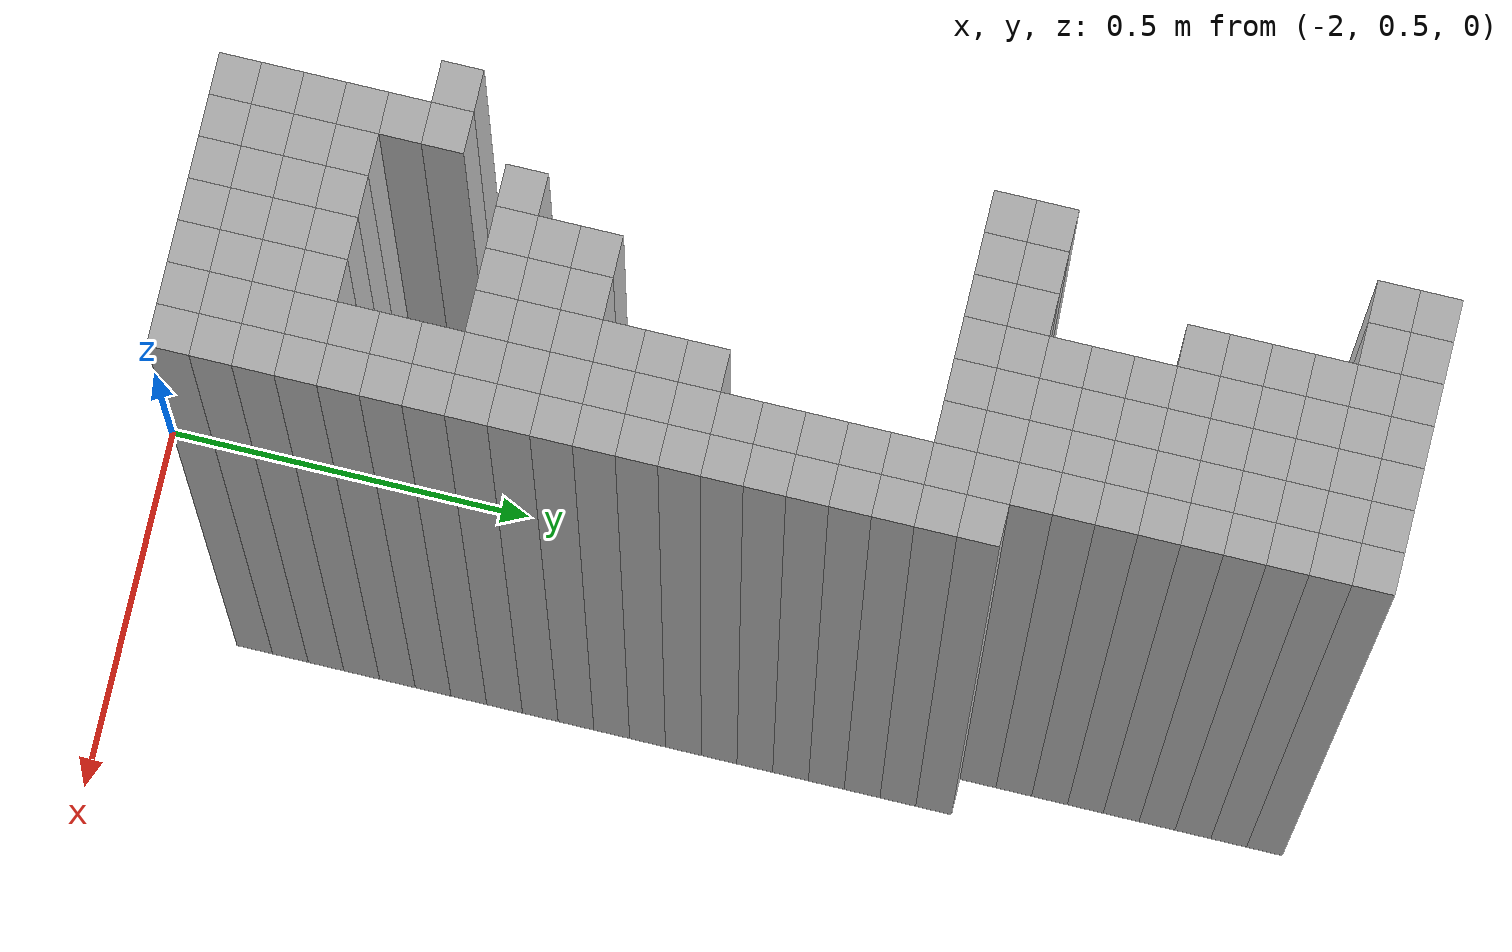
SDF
<sdf version="1.9">
 <world name="map_world">
  <model name="wall_181_112">
   <static>true</static>
   <pose>-2.111 2.080 1.250 0 0 0</pose>
   <link name="link">
    <collision name="collision"><geometry><box><size>0.050 0.050 2.500</size></box></geometry></collision>
    <visual name="visual"><geometry><box><size>0.050 0.050 2.500</size></box></geometry></visual>
   </link>
  </model>
  <model name="wall_182_112">
   <static>true</static>
   <pose>-2.061 2.080 1.250 0 0 0</pose>
   <link name="link">
    <collision name="collision"><geometry><box><size>0.050 0.050 2.500</size></box></geometry></collision>
    <visual name="visual"><geometry><box><size>0.050 0.050 2.500</size></box></geometry></visual>
   </link>
  </model>
  <model name="wall_183_112">
   <static>true</static>
   <pose>-2.011 2.080 1.250 0 0 0</pose>
   <link name="link">
    <collision name="collision"><geometry><box><size>0.050 0.050 2.500</size></box></geometry></collision>
    <visual name="visual"><geometry><box><size>0.050 0.050 2.500</size></box></geometry></visual>
   </link>
  </model>
  <model name="wall_184_112">
   <static>true</static>
   <pose>-1.961 2.080 1.250 0 0 0</pose>
   <link name="link">
    <collision name="collision"><geometry><box><size>0.050 0.050 2.500</size></box></geometry></collision>
    <visual name="visual"><geometry><box><size>0.050 0.050 2.500</size></box></geometry></visual>
   </link>
  </model>
  <model name="wall_185_112">
   <static>true</static>
   <pose>-1.911 2.080 1.250 0 0 0</pose>
   <link name="link">
    <collision name="collision"><geometry><box><size>0.050 0.050 2.500</size></box></geometry></collision>
    <visual name="visual"><geometry><box><size>0.050 0.050 2.500</size></box></geometry></visual>
   </link>
  </model>
  <model name="wall_186_112">
   <static>true</static>
   <pose>-1.861 2.080 1.250 0 0 0</pose>
   <link name="link">
    <collision name="collision"><geometry><box><size>0.050 0.050 2.500</size></box></geometry></collision>
    <visual name="visual"><geometry><box><size>0.050 0.050 2.500</size></box></geometry></visual>
   </link>
  </model>
  <model name="wall_187_112">
   <static>true</static>
   <pose>-1.811 2.080 1.250 0 0 0</pose>
   <link name="link">
    <collision name="collision"><geometry><box><size>0.050 0.050 2.500</size></box></geometry></collision>
    <visual name="visual"><geometry><box><size>0.050 0.050 2.500</size></box></geometry></visual>
   </link>
  </model>
  <model name="wall_181_113">
   <static>true</static>
   <pose>-2.111 2.030 1.250 0 0 0</pose>
   <link name="link">
    <collision name="collision"><geometry><box><size>0.050 0.050 2.500</size></box></geometry></collision>
    <visual name="visual"><geometry><box><size>0.050 0.050 2.500</size></box></geometry></visual>
   </link>
  </model>
  <model name="wall_182_113">
   <static>true</static>
   <pose>-2.061 2.030 1.250 0 0 0</pose>
   <link name="link">
    <collision name="collision"><geometry><box><size>0.050 0.050 2.500</size></box></geometry></collision>
    <visual name="visual"><geometry><box><size>0.050 0.050 2.500</size></box></geometry></visual>
   </link>
  </model>
  <model name="wall_183_113">
   <static>true</static>
   <pose>-2.011 2.030 1.250 0 0 0</pose>
   <link name="link">
    <collision name="collision"><geometry><box><size>0.050 0.050 2.500</size></box></geometry></collision>
    <visual name="visual"><geometry><box><size>0.050 0.050 2.500</size></box></geometry></visual>
   </link>
  </model>
  <model name="wall_184_113">
   <static>true</static>
   <pose>-1.961 2.030 1.250 0 0 0</pose>
   <link name="link">
    <collision name="collision"><geometry><box><size>0.050 0.050 2.500</size></box></geometry></collision>
    <visual name="visual"><geometry><box><size>0.050 0.050 2.500</size></box></geometry></visual>
   </link>
  </model>
  <model name="wall_185_113">
   <static>true</static>
   <pose>-1.911 2.030 1.250 0 0 0</pose>
   <link name="link">
    <collision name="collision"><geometry><box><size>0.050 0.050 2.500</size></box></geometry></collision>
    <visual name="visual"><geometry><box><size>0.050 0.050 2.500</size></box></geometry></visual>
   </link>
  </model>
  <model name="wall_186_113">
   <static>true</static>
   <pose>-1.861 2.030 1.250 0 0 0</pose>
   <link name="link">
    <collision name="collision"><geometry><box><size>0.050 0.050 2.500</size></box></geometry></collision>
    <visual name="visual"><geometry><box><size>0.050 0.050 2.500</size></box></geometry></visual>
   </link>
  </model>
  <model name="wall_187_113">
   <static>true</static>
   <pose>-1.811 2.030 1.250 0 0 0</pose>
   <link name="link">
    <collision name="collision"><geometry><box><size>0.050 0.050 2.500</size></box></geometry></collision>
    <visual name="visual"><geometry><box><size>0.050 0.050 2.500</size></box></geometry></visual>
   </link>
  </model>
  <model name="wall_183_114">
   <static>true</static>
   <pose>-2.011 1.980 1.250 0 0 0</pose>
   <link name="link">
    <collision name="collision"><geometry><box><size>0.050 0.050 2.500</size></box></geometry></collision>
    <visual name="visual"><geometry><box><size>0.050 0.050 2.500</size></box></geometry></visual>
   </link>
  </model>
  <model name="wall_184_114">
   <static>true</static>
   <pose>-1.961 1.980 1.250 0 0 0</pose>
   <link name="link">
    <collision name="collision"><geometry><box><size>0.050 0.050 2.500</size></box></geometry></collision>
    <visual name="visual"><geometry><box><size>0.050 0.050 2.500</size></box></geometry></visual>
   </link>
  </model>
  <model name="wall_185_114">
   <static>true</static>
   <pose>-1.911 1.980 1.250 0 0 0</pose>
   <link name="link">
    <collision name="collision"><geometry><box><size>0.050 0.050 2.500</size></box></geometry></collision>
    <visual name="visual"><geometry><box><size>0.050 0.050 2.500</size></box></geometry></visual>
   </link>
  </model>
  <model name="wall_186_114">
   <static>true</static>
   <pose>-1.861 1.980 1.250 0 0 0</pose>
   <link name="link">
    <collision name="collision"><geometry><box><size>0.050 0.050 2.500</size></box></geometry></collision>
    <visual name="visual"><geometry><box><size>0.050 0.050 2.500</size></box></geometry></visual>
   </link>
  </model>
  <model name="wall_187_114">
   <static>true</static>
   <pose>-1.811 1.980 1.250 0 0 0</pose>
   <link name="link">
    <collision name="collision"><geometry><box><size>0.050 0.050 2.500</size></box></geometry></collision>
    <visual name="visual"><geometry><box><size>0.050 0.050 2.500</size></box></geometry></visual>
   </link>
  </model>
  <model name="wall_183_115">
   <static>true</static>
   <pose>-2.011 1.930 1.250 0 0 0</pose>
   <link name="link">
    <collision name="collision"><geometry><box><size>0.050 0.050 2.500</size></box></geometry></collision>
    <visual name="visual"><geometry><box><size>0.050 0.050 2.500</size></box></geometry></visual>
   </link>
  </model>
  <model name="wall_184_115">
   <static>true</static>
   <pose>-1.961 1.930 1.250 0 0 0</pose>
   <link name="link">
    <collision name="collision"><geometry><box><size>0.050 0.050 2.500</size></box></geometry></collision>
    <visual name="visual"><geometry><box><size>0.050 0.050 2.500</size></box></geometry></visual>
   </link>
  </model>
  <model name="wall_185_115">
   <static>true</static>
   <pose>-1.911 1.930 1.250 0 0 0</pose>
   <link name="link">
    <collision name="collision"><geometry><box><size>0.050 0.050 2.500</size></box></geometry></collision>
    <visual name="visual"><geometry><box><size>0.050 0.050 2.500</size></box></geometry></visual>
   </link>
  </model>
  <model name="wall_186_115">
   <static>true</static>
   <pose>-1.861 1.930 1.250 0 0 0</pose>
   <link name="link">
    <collision name="collision"><geometry><box><size>0.050 0.050 2.500</size></box></geometry></collision>
    <visual name="visual"><geometry><box><size>0.050 0.050 2.500</size></box></geometry></visual>
   </link>
  </model>
  <model name="wall_187_115">
   <static>true</static>
   <pose>-1.811 1.930 1.250 0 0 0</pose>
   <link name="link">
    <collision name="collision"><geometry><box><size>0.050 0.050 2.500</size></box></geometry></collision>
    <visual name="visual"><geometry><box><size>0.050 0.050 2.500</size></box></geometry></visual>
   </link>
  </model>
  <model name="wall_183_116">
   <static>true</static>
   <pose>-2.011 1.880 1.250 0 0 0</pose>
   <link name="link">
    <collision name="collision"><geometry><box><size>0.050 0.050 2.500</size></box></geometry></collision>
    <visual name="visual"><geometry><box><size>0.050 0.050 2.500</size></box></geometry></visual>
   </link>
  </model>
  <model name="wall_184_116">
   <static>true</static>
   <pose>-1.961 1.880 1.250 0 0 0</pose>
   <link name="link">
    <collision name="collision"><geometry><box><size>0.050 0.050 2.500</size></box></geometry></collision>
    <visual name="visual"><geometry><box><size>0.050 0.050 2.500</size></box></geometry></visual>
   </link>
  </model>
  <model name="wall_185_116">
   <static>true</static>
   <pose>-1.911 1.880 1.250 0 0 0</pose>
   <link name="link">
    <collision name="collision"><geometry><box><size>0.050 0.050 2.500</size></box></geometry></collision>
    <visual name="visual"><geometry><box><size>0.050 0.050 2.500</size></box></geometry></visual>
   </link>
  </model>
  <model name="wall_186_116">
   <static>true</static>
   <pose>-1.861 1.880 1.250 0 0 0</pose>
   <link name="link">
    <collision name="collision"><geometry><box><size>0.050 0.050 2.500</size></box></geometry></collision>
    <visual name="visual"><geometry><box><size>0.050 0.050 2.500</size></box></geometry></visual>
   </link>
  </model>
  <model name="wall_187_116">
   <static>true</static>
   <pose>-1.811 1.880 1.250 0 0 0</pose>
   <link name="link">
    <collision name="collision"><geometry><box><size>0.050 0.050 2.500</size></box></geometry></collision>
    <visual name="visual"><geometry><box><size>0.050 0.050 2.500</size></box></geometry></visual>
   </link>
  </model>
  <model name="wall_183_117">
   <static>true</static>
   <pose>-2.011 1.830 1.250 0 0 0</pose>
   <link name="link">
    <collision name="collision"><geometry><box><size>0.050 0.050 2.500</size></box></geometry></collision>
    <visual name="visual"><geometry><box><size>0.050 0.050 2.500</size></box></geometry></visual>
   </link>
  </model>
  <model name="wall_184_117">
   <static>true</static>
   <pose>-1.961 1.830 1.250 0 0 0</pose>
   <link name="link">
    <collision name="collision"><geometry><box><size>0.050 0.050 2.500</size></box></geometry></collision>
    <visual name="visual"><geometry><box><size>0.050 0.050 2.500</size></box></geometry></visual>
   </link>
  </model>
  <model name="wall_185_117">
   <static>true</static>
   <pose>-1.911 1.830 1.250 0 0 0</pose>
   <link name="link">
    <collision name="collision"><geometry><box><size>0.050 0.050 2.500</size></box></geometry></collision>
    <visual name="visual"><geometry><box><size>0.050 0.050 2.500</size></box></geometry></visual>
   </link>
  </model>
  <model name="wall_186_117">
   <static>true</static>
   <pose>-1.861 1.830 1.250 0 0 0</pose>
   <link name="link">
    <collision name="collision"><geometry><box><size>0.050 0.050 2.500</size></box></geometry></collision>
    <visual name="visual"><geometry><box><size>0.050 0.050 2.500</size></box></geometry></visual>
   </link>
  </model>
  <model name="wall_187_117">
   <static>true</static>
   <pose>-1.811 1.830 1.250 0 0 0</pose>
   <link name="link">
    <collision name="collision"><geometry><box><size>0.050 0.050 2.500</size></box></geometry></collision>
    <visual name="visual"><geometry><box><size>0.050 0.050 2.500</size></box></geometry></visual>
   </link>
  </model>
  <model name="wall_184_118">
   <static>true</static>
   <pose>-1.961 1.780 1.250 0 0 0</pose>
   <link name="link">
    <collision name="collision"><geometry><box><size>0.050 0.050 2.500</size></box></geometry></collision>
    <visual name="visual"><geometry><box><size>0.050 0.050 2.500</size></box></geometry></visual>
   </link>
  </model>
  <model name="wall_185_118">
   <static>true</static>
   <pose>-1.911 1.780 1.250 0 0 0</pose>
   <link name="link">
    <collision name="collision"><geometry><box><size>0.050 0.050 2.500</size></box></geometry></collision>
    <visual name="visual"><geometry><box><size>0.050 0.050 2.500</size></box></geometry></visual>
   </link>
  </model>
  <model name="wall_186_118">
   <static>true</static>
   <pose>-1.861 1.780 1.250 0 0 0</pose>
   <link name="link">
    <collision name="collision"><geometry><box><size>0.050 0.050 2.500</size></box></geometry></collision>
    <visual name="visual"><geometry><box><size>0.050 0.050 2.500</size></box></geometry></visual>
   </link>
  </model>
  <model name="wall_187_118">
   <static>true</static>
   <pose>-1.811 1.780 1.250 0 0 0</pose>
   <link name="link">
    <collision name="collision"><geometry><box><size>0.050 0.050 2.500</size></box></geometry></collision>
    <visual name="visual"><geometry><box><size>0.050 0.050 2.500</size></box></geometry></visual>
   </link>
  </model>
  <model name="wall_184_119">
   <static>true</static>
   <pose>-1.961 1.730 1.250 0 0 0</pose>
   <link name="link">
    <collision name="collision"><geometry><box><size>0.050 0.050 2.500</size></box></geometry></collision>
    <visual name="visual"><geometry><box><size>0.050 0.050 2.500</size></box></geometry></visual>
   </link>
  </model>
  <model name="wall_185_119">
   <static>true</static>
   <pose>-1.911 1.730 1.250 0 0 0</pose>
   <link name="link">
    <collision name="collision"><geometry><box><size>0.050 0.050 2.500</size></box></geometry></collision>
    <visual name="visual"><geometry><box><size>0.050 0.050 2.500</size></box></geometry></visual>
   </link>
  </model>
  <model name="wall_186_119">
   <static>true</static>
   <pose>-1.861 1.730 1.250 0 0 0</pose>
   <link name="link">
    <collision name="collision"><geometry><box><size>0.050 0.050 2.500</size></box></geometry></collision>
    <visual name="visual"><geometry><box><size>0.050 0.050 2.500</size></box></geometry></visual>
   </link>
  </model>
  <model name="wall_187_119">
   <static>true</static>
   <pose>-1.811 1.730 1.250 0 0 0</pose>
   <link name="link">
    <collision name="collision"><geometry><box><size>0.050 0.050 2.500</size></box></geometry></collision>
    <visual name="visual"><geometry><box><size>0.050 0.050 2.500</size></box></geometry></visual>
   </link>
  </model>
  <model name="wall_184_120">
   <static>true</static>
   <pose>-1.961 1.680 1.250 0 0 0</pose>
   <link name="link">
    <collision name="collision"><geometry><box><size>0.050 0.050 2.500</size></box></geometry></collision>
    <visual name="visual"><geometry><box><size>0.050 0.050 2.500</size></box></geometry></visual>
   </link>
  </model>
  <model name="wall_185_120">
   <static>true</static>
   <pose>-1.911 1.680 1.250 0 0 0</pose>
   <link name="link">
    <collision name="collision"><geometry><box><size>0.050 0.050 2.500</size></box></geometry></collision>
    <visual name="visual"><geometry><box><size>0.050 0.050 2.500</size></box></geometry></visual>
   </link>
  </model>
  <model name="wall_186_120">
   <static>true</static>
   <pose>-1.861 1.680 1.250 0 0 0</pose>
   <link name="link">
    <collision name="collision"><geometry><box><size>0.050 0.050 2.500</size></box></geometry></collision>
    <visual name="visual"><geometry><box><size>0.050 0.050 2.500</size></box></geometry></visual>
   </link>
  </model>
  <model name="wall_187_120">
   <static>true</static>
   <pose>-1.811 1.680 1.250 0 0 0</pose>
   <link name="link">
    <collision name="collision"><geometry><box><size>0.050 0.050 2.500</size></box></geometry></collision>
    <visual name="visual"><geometry><box><size>0.050 0.050 2.500</size></box></geometry></visual>
   </link>
  </model>
  <model name="wall_181_121">
   <static>true</static>
   <pose>-2.111 1.630 1.250 0 0 0</pose>
   <link name="link">
    <collision name="collision"><geometry><box><size>0.050 0.050 2.500</size></box></geometry></collision>
    <visual name="visual"><geometry><box><size>0.050 0.050 2.500</size></box></geometry></visual>
   </link>
  </model>
  <model name="wall_182_121">
   <static>true</static>
   <pose>-2.061 1.630 1.250 0 0 0</pose>
   <link name="link">
    <collision name="collision"><geometry><box><size>0.050 0.050 2.500</size></box></geometry></collision>
    <visual name="visual"><geometry><box><size>0.050 0.050 2.500</size></box></geometry></visual>
   </link>
  </model>
  <model name="wall_183_121">
   <static>true</static>
   <pose>-2.011 1.630 1.250 0 0 0</pose>
   <link name="link">
    <collision name="collision"><geometry><box><size>0.050 0.050 2.500</size></box></geometry></collision>
    <visual name="visual"><geometry><box><size>0.050 0.050 2.500</size></box></geometry></visual>
   </link>
  </model>
  <model name="wall_184_121">
   <static>true</static>
   <pose>-1.961 1.630 1.250 0 0 0</pose>
   <link name="link">
    <collision name="collision"><geometry><box><size>0.050 0.050 2.500</size></box></geometry></collision>
    <visual name="visual"><geometry><box><size>0.050 0.050 2.500</size></box></geometry></visual>
   </link>
  </model>
  <model name="wall_185_121">
   <static>true</static>
   <pose>-1.911 1.630 1.250 0 0 0</pose>
   <link name="link">
    <collision name="collision"><geometry><box><size>0.050 0.050 2.500</size></box></geometry></collision>
    <visual name="visual"><geometry><box><size>0.050 0.050 2.500</size></box></geometry></visual>
   </link>
  </model>
  <model name="wall_186_121">
   <static>true</static>
   <pose>-1.861 1.630 1.250 0 0 0</pose>
   <link name="link">
    <collision name="collision"><geometry><box><size>0.050 0.050 2.500</size></box></geometry></collision>
    <visual name="visual"><geometry><box><size>0.050 0.050 2.500</size></box></geometry></visual>
   </link>
  </model>
  <model name="wall_187_121">
   <static>true</static>
   <pose>-1.811 1.630 1.250 0 0 0</pose>
   <link name="link">
    <collision name="collision"><geometry><box><size>0.050 0.050 2.500</size></box></geometry></collision>
    <visual name="visual"><geometry><box><size>0.050 0.050 2.500</size></box></geometry></visual>
   </link>
  </model>
  <model name="wall_188_121">
   <static>true</static>
   <pose>-1.761 1.630 1.250 0 0 0</pose>
   <link name="link">
    <collision name="collision"><geometry><box><size>0.050 0.050 2.500</size></box></geometry></collision>
    <visual name="visual"><geometry><box><size>0.050 0.050 2.500</size></box></geometry></visual>
   </link>
  </model>
  <model name="wall_181_122">
   <static>true</static>
   <pose>-2.111 1.580 1.250 0 0 0</pose>
   <link name="link">
    <collision name="collision"><geometry><box><size>0.050 0.050 2.500</size></box></geometry></collision>
    <visual name="visual"><geometry><box><size>0.050 0.050 2.500</size></box></geometry></visual>
   </link>
  </model>
  <model name="wall_182_122">
   <static>true</static>
   <pose>-2.061 1.580 1.250 0 0 0</pose>
   <link name="link">
    <collision name="collision"><geometry><box><size>0.050 0.050 2.500</size></box></geometry></collision>
    <visual name="visual"><geometry><box><size>0.050 0.050 2.500</size></box></geometry></visual>
   </link>
  </model>
  <model name="wall_183_122">
   <static>true</static>
   <pose>-2.011 1.580 1.250 0 0 0</pose>
   <link name="link">
    <collision name="collision"><geometry><box><size>0.050 0.050 2.500</size></box></geometry></collision>
    <visual name="visual"><geometry><box><size>0.050 0.050 2.500</size></box></geometry></visual>
   </link>
  </model>
  <model name="wall_184_122">
   <static>true</static>
   <pose>-1.961 1.580 1.250 0 0 0</pose>
   <link name="link">
    <collision name="collision"><geometry><box><size>0.050 0.050 2.500</size></box></geometry></collision>
    <visual name="visual"><geometry><box><size>0.050 0.050 2.500</size></box></geometry></visual>
   </link>
  </model>
  <model name="wall_185_122">
   <static>true</static>
   <pose>-1.911 1.580 1.250 0 0 0</pose>
   <link name="link">
    <collision name="collision"><geometry><box><size>0.050 0.050 2.500</size></box></geometry></collision>
    <visual name="visual"><geometry><box><size>0.050 0.050 2.500</size></box></geometry></visual>
   </link>
  </model>
  <model name="wall_186_122">
   <static>true</static>
   <pose>-1.861 1.580 1.250 0 0 0</pose>
   <link name="link">
    <collision name="collision"><geometry><box><size>0.050 0.050 2.500</size></box></geometry></collision>
    <visual name="visual"><geometry><box><size>0.050 0.050 2.500</size></box></geometry></visual>
   </link>
  </model>
  <model name="wall_187_122">
   <static>true</static>
   <pose>-1.811 1.580 1.250 0 0 0</pose>
   <link name="link">
    <collision name="collision"><geometry><box><size>0.050 0.050 2.500</size></box></geometry></collision>
    <visual name="visual"><geometry><box><size>0.050 0.050 2.500</size></box></geometry></visual>
   </link>
  </model>
  <model name="wall_188_122">
   <static>true</static>
   <pose>-1.761 1.580 1.250 0 0 0</pose>
   <link name="link">
    <collision name="collision"><geometry><box><size>0.050 0.050 2.500</size></box></geometry></collision>
    <visual name="visual"><geometry><box><size>0.050 0.050 2.500</size></box></geometry></visual>
   </link>
  </model>
  <model name="wall_187_123">
   <static>true</static>
   <pose>-1.811 1.530 1.250 0 0 0</pose>
   <link name="link">
    <collision name="collision"><geometry><box><size>0.050 0.050 2.500</size></box></geometry></collision>
    <visual name="visual"><geometry><box><size>0.050 0.050 2.500</size></box></geometry></visual>
   </link>
  </model>
  <model name="wall_188_123">
   <static>true</static>
   <pose>-1.761 1.530 1.250 0 0 0</pose>
   <link name="link">
    <collision name="collision"><geometry><box><size>0.050 0.050 2.500</size></box></geometry></collision>
    <visual name="visual"><geometry><box><size>0.050 0.050 2.500</size></box></geometry></visual>
   </link>
  </model>
  <model name="wall_187_124">
   <static>true</static>
   <pose>-1.811 1.480 1.250 0 0 0</pose>
   <link name="link">
    <collision name="collision"><geometry><box><size>0.050 0.050 2.500</size></box></geometry></collision>
    <visual name="visual"><geometry><box><size>0.050 0.050 2.500</size></box></geometry></visual>
   </link>
  </model>
  <model name="wall_188_124">
   <static>true</static>
   <pose>-1.761 1.480 1.250 0 0 0</pose>
   <link name="link">
    <collision name="collision"><geometry><box><size>0.050 0.050 2.500</size></box></geometry></collision>
    <visual name="visual"><geometry><box><size>0.050 0.050 2.500</size></box></geometry></visual>
   </link>
  </model>
  <model name="wall_187_125">
   <static>true</static>
   <pose>-1.811 1.430 1.250 0 0 0</pose>
   <link name="link">
    <collision name="collision"><geometry><box><size>0.050 0.050 2.500</size></box></geometry></collision>
    <visual name="visual"><geometry><box><size>0.050 0.050 2.500</size></box></geometry></visual>
   </link>
  </model>
  <model name="wall_188_125">
   <static>true</static>
   <pose>-1.761 1.430 1.250 0 0 0</pose>
   <link name="link">
    <collision name="collision"><geometry><box><size>0.050 0.050 2.500</size></box></geometry></collision>
    <visual name="visual"><geometry><box><size>0.050 0.050 2.500</size></box></geometry></visual>
   </link>
  </model>
  <model name="wall_187_126">
   <static>true</static>
   <pose>-1.811 1.380 1.250 0 0 0</pose>
   <link name="link">
    <collision name="collision"><geometry><box><size>0.050 0.050 2.500</size></box></geometry></collision>
    <visual name="visual"><geometry><box><size>0.050 0.050 2.500</size></box></geometry></visual>
   </link>
  </model>
  <model name="wall_188_126">
   <static>true</static>
   <pose>-1.761 1.380 1.250 0 0 0</pose>
   <link name="link">
    <collision name="collision"><geometry><box><size>0.050 0.050 2.500</size></box></geometry></collision>
    <visual name="visual"><geometry><box><size>0.050 0.050 2.500</size></box></geometry></visual>
   </link>
  </model>
  <model name="wall_187_127">
   <static>true</static>
   <pose>-1.811 1.330 1.250 0 0 0</pose>
   <link name="link">
    <collision name="collision"><geometry><box><size>0.050 0.050 2.500</size></box></geometry></collision>
    <visual name="visual"><geometry><box><size>0.050 0.050 2.500</size></box></geometry></visual>
   </link>
  </model>
  <model name="wall_188_127">
   <static>true</static>
   <pose>-1.761 1.330 1.250 0 0 0</pose>
   <link name="link">
    <collision name="collision"><geometry><box><size>0.050 0.050 2.500</size></box></geometry></collision>
    <visual name="visual"><geometry><box><size>0.050 0.050 2.500</size></box></geometry></visual>
   </link>
  </model>
  <model name="wall_186_128">
   <static>true</static>
   <pose>-1.861 1.280 1.250 0 0 0</pose>
   <link name="link">
    <collision name="collision"><geometry><box><size>0.050 0.050 2.500</size></box></geometry></collision>
    <visual name="visual"><geometry><box><size>0.050 0.050 2.500</size></box></geometry></visual>
   </link>
  </model>
  <model name="wall_187_128">
   <static>true</static>
   <pose>-1.811 1.280 1.250 0 0 0</pose>
   <link name="link">
    <collision name="collision"><geometry><box><size>0.050 0.050 2.500</size></box></geometry></collision>
    <visual name="visual"><geometry><box><size>0.050 0.050 2.500</size></box></geometry></visual>
   </link>
  </model>
  <model name="wall_188_128">
   <static>true</static>
   <pose>-1.761 1.280 1.250 0 0 0</pose>
   <link name="link">
    <collision name="collision"><geometry><box><size>0.050 0.050 2.500</size></box></geometry></collision>
    <visual name="visual"><geometry><box><size>0.050 0.050 2.500</size></box></geometry></visual>
   </link>
  </model>
  <model name="wall_186_129">
   <static>true</static>
   <pose>-1.861 1.230 1.250 0 0 0</pose>
   <link name="link">
    <collision name="collision"><geometry><box><size>0.050 0.050 2.500</size></box></geometry></collision>
    <visual name="visual"><geometry><box><size>0.050 0.050 2.500</size></box></geometry></visual>
   </link>
  </model>
  <model name="wall_187_129">
   <static>true</static>
   <pose>-1.811 1.230 1.250 0 0 0</pose>
   <link name="link">
    <collision name="collision"><geometry><box><size>0.050 0.050 2.500</size></box></geometry></collision>
    <visual name="visual"><geometry><box><size>0.050 0.050 2.500</size></box></geometry></visual>
   </link>
  </model>
  <model name="wall_188_129">
   <static>true</static>
   <pose>-1.761 1.230 1.250 0 0 0</pose>
   <link name="link">
    <collision name="collision"><geometry><box><size>0.050 0.050 2.500</size></box></geometry></collision>
    <visual name="visual"><geometry><box><size>0.050 0.050 2.500</size></box></geometry></visual>
   </link>
  </model>
  <model name="wall_186_130">
   <static>true</static>
   <pose>-1.861 1.180 1.250 0 0 0</pose>
   <link name="link">
    <collision name="collision"><geometry><box><size>0.050 0.050 2.500</size></box></geometry></collision>
    <visual name="visual"><geometry><box><size>0.050 0.050 2.500</size></box></geometry></visual>
   </link>
  </model>
  <model name="wall_187_130">
   <static>true</static>
   <pose>-1.811 1.180 1.250 0 0 0</pose>
   <link name="link">
    <collision name="collision"><geometry><box><size>0.050 0.050 2.500</size></box></geometry></collision>
    <visual name="visual"><geometry><box><size>0.050 0.050 2.500</size></box></geometry></visual>
   </link>
  </model>
  <model name="wall_188_130">
   <static>true</static>
   <pose>-1.761 1.180 1.250 0 0 0</pose>
   <link name="link">
    <collision name="collision"><geometry><box><size>0.050 0.050 2.500</size></box></geometry></collision>
    <visual name="visual"><geometry><box><size>0.050 0.050 2.500</size></box></geometry></visual>
   </link>
  </model>
  <model name="wall_184_131">
   <static>true</static>
   <pose>-1.961 1.130 1.250 0 0 0</pose>
   <link name="link">
    <collision name="collision"><geometry><box><size>0.050 0.050 2.500</size></box></geometry></collision>
    <visual name="visual"><geometry><box><size>0.050 0.050 2.500</size></box></geometry></visual>
   </link>
  </model>
  <model name="wall_185_131">
   <static>true</static>
   <pose>-1.911 1.130 1.250 0 0 0</pose>
   <link name="link">
    <collision name="collision"><geometry><box><size>0.050 0.050 2.500</size></box></geometry></collision>
    <visual name="visual"><geometry><box><size>0.050 0.050 2.500</size></box></geometry></visual>
   </link>
  </model>
  <model name="wall_186_131">
   <static>true</static>
   <pose>-1.861 1.130 1.250 0 0 0</pose>
   <link name="link">
    <collision name="collision"><geometry><box><size>0.050 0.050 2.500</size></box></geometry></collision>
    <visual name="visual"><geometry><box><size>0.050 0.050 2.500</size></box></geometry></visual>
   </link>
  </model>
  <model name="wall_187_131">
   <static>true</static>
   <pose>-1.811 1.130 1.250 0 0 0</pose>
   <link name="link">
    <collision name="collision"><geometry><box><size>0.050 0.050 2.500</size></box></geometry></collision>
    <visual name="visual"><geometry><box><size>0.050 0.050 2.500</size></box></geometry></visual>
   </link>
  </model>
  <model name="wall_188_131">
   <static>true</static>
   <pose>-1.761 1.130 1.250 0 0 0</pose>
   <link name="link">
    <collision name="collision"><geometry><box><size>0.050 0.050 2.500</size></box></geometry></collision>
    <visual name="visual"><geometry><box><size>0.050 0.050 2.500</size></box></geometry></visual>
   </link>
  </model>
  <model name="wall_184_132">
   <static>true</static>
   <pose>-1.961 1.080 1.250 0 0 0</pose>
   <link name="link">
    <collision name="collision"><geometry><box><size>0.050 0.050 2.500</size></box></geometry></collision>
    <visual name="visual"><geometry><box><size>0.050 0.050 2.500</size></box></geometry></visual>
   </link>
  </model>
  <model name="wall_185_132">
   <static>true</static>
   <pose>-1.911 1.080 1.250 0 0 0</pose>
   <link name="link">
    <collision name="collision"><geometry><box><size>0.050 0.050 2.500</size></box></geometry></collision>
    <visual name="visual"><geometry><box><size>0.050 0.050 2.500</size></box></geometry></visual>
   </link>
  </model>
  <model name="wall_186_132">
   <static>true</static>
   <pose>-1.861 1.080 1.250 0 0 0</pose>
   <link name="link">
    <collision name="collision"><geometry><box><size>0.050 0.050 2.500</size></box></geometry></collision>
    <visual name="visual"><geometry><box><size>0.050 0.050 2.500</size></box></geometry></visual>
   </link>
  </model>
  <model name="wall_187_132">
   <static>true</static>
   <pose>-1.811 1.080 1.250 0 0 0</pose>
   <link name="link">
    <collision name="collision"><geometry><box><size>0.050 0.050 2.500</size></box></geometry></collision>
    <visual name="visual"><geometry><box><size>0.050 0.050 2.500</size></box></geometry></visual>
   </link>
  </model>
  <model name="wall_188_132">
   <static>true</static>
   <pose>-1.761 1.080 1.250 0 0 0</pose>
   <link name="link">
    <collision name="collision"><geometry><box><size>0.050 0.050 2.500</size></box></geometry></collision>
    <visual name="visual"><geometry><box><size>0.050 0.050 2.500</size></box></geometry></visual>
   </link>
  </model>
  <model name="wall_183_133">
   <static>true</static>
   <pose>-2.011 1.030 1.250 0 0 0</pose>
   <link name="link">
    <collision name="collision"><geometry><box><size>0.050 0.050 2.500</size></box></geometry></collision>
    <visual name="visual"><geometry><box><size>0.050 0.050 2.500</size></box></geometry></visual>
   </link>
  </model>
  <model name="wall_184_133">
   <static>true</static>
   <pose>-1.961 1.030 1.250 0 0 0</pose>
   <link name="link">
    <collision name="collision"><geometry><box><size>0.050 0.050 2.500</size></box></geometry></collision>
    <visual name="visual"><geometry><box><size>0.050 0.050 2.500</size></box></geometry></visual>
   </link>
  </model>
  <model name="wall_185_133">
   <static>true</static>
   <pose>-1.911 1.030 1.250 0 0 0</pose>
   <link name="link">
    <collision name="collision"><geometry><box><size>0.050 0.050 2.500</size></box></geometry></collision>
    <visual name="visual"><geometry><box><size>0.050 0.050 2.500</size></box></geometry></visual>
   </link>
  </model>
  <model name="wall_186_133">
   <static>true</static>
   <pose>-1.861 1.030 1.250 0 0 0</pose>
   <link name="link">
    <collision name="collision"><geometry><box><size>0.050 0.050 2.500</size></box></geometry></collision>
    <visual name="visual"><geometry><box><size>0.050 0.050 2.500</size></box></geometry></visual>
   </link>
  </model>
  <model name="wall_187_133">
   <static>true</static>
   <pose>-1.811 1.030 1.250 0 0 0</pose>
   <link name="link">
    <collision name="collision"><geometry><box><size>0.050 0.050 2.500</size></box></geometry></collision>
    <visual name="visual"><geometry><box><size>0.050 0.050 2.500</size></box></geometry></visual>
   </link>
  </model>
  <model name="wall_188_133">
   <static>true</static>
   <pose>-1.761 1.030 1.250 0 0 0</pose>
   <link name="link">
    <collision name="collision"><geometry><box><size>0.050 0.050 2.500</size></box></geometry></collision>
    <visual name="visual"><geometry><box><size>0.050 0.050 2.500</size></box></geometry></visual>
   </link>
  </model>
  <model name="wall_187_134">
   <static>true</static>
   <pose>-1.811 0.980 1.250 0 0 0</pose>
   <link name="link">
    <collision name="collision"><geometry><box><size>0.050 0.050 2.500</size></box></geometry></collision>
    <visual name="visual"><geometry><box><size>0.050 0.050 2.500</size></box></geometry></visual>
   </link>
  </model>
  <model name="wall_188_134">
   <static>true</static>
   <pose>-1.761 0.980 1.250 0 0 0</pose>
   <link name="link">
    <collision name="collision"><geometry><box><size>0.050 0.050 2.500</size></box></geometry></collision>
    <visual name="visual"><geometry><box><size>0.050 0.050 2.500</size></box></geometry></visual>
   </link>
  </model>
  <model name="wall_181_135">
   <static>true</static>
   <pose>-2.111 0.930 1.250 0 0 0</pose>
   <link name="link">
    <collision name="collision"><geometry><box><size>0.050 0.050 2.500</size></box></geometry></collision>
    <visual name="visual"><geometry><box><size>0.050 0.050 2.500</size></box></geometry></visual>
   </link>
  </model>
  <model name="wall_182_135">
   <static>true</static>
   <pose>-2.061 0.930 1.250 0 0 0</pose>
   <link name="link">
    <collision name="collision"><geometry><box><size>0.050 0.050 2.500</size></box></geometry></collision>
    <visual name="visual"><geometry><box><size>0.050 0.050 2.500</size></box></geometry></visual>
   </link>
  </model>
  <model name="wall_187_135">
   <static>true</static>
   <pose>-1.811 0.930 1.250 0 0 0</pose>
   <link name="link">
    <collision name="collision"><geometry><box><size>0.050 0.050 2.500</size></box></geometry></collision>
    <visual name="visual"><geometry><box><size>0.050 0.050 2.500</size></box></geometry></visual>
   </link>
  </model>
  <model name="wall_188_135">
   <static>true</static>
   <pose>-1.761 0.930 1.250 0 0 0</pose>
   <link name="link">
    <collision name="collision"><geometry><box><size>0.050 0.050 2.500</size></box></geometry></collision>
    <visual name="visual"><geometry><box><size>0.050 0.050 2.500</size></box></geometry></visual>
   </link>
  </model>
  <model name="wall_182_136">
   <static>true</static>
   <pose>-2.061 0.880 1.250 0 0 0</pose>
   <link name="link">
    <collision name="collision"><geometry><box><size>0.050 0.050 2.500</size></box></geometry></collision>
    <visual name="visual"><geometry><box><size>0.050 0.050 2.500</size></box></geometry></visual>
   </link>
  </model>
  <model name="wall_187_136">
   <static>true</static>
   <pose>-1.811 0.880 1.250 0 0 0</pose>
   <link name="link">
    <collision name="collision"><geometry><box><size>0.050 0.050 2.500</size></box></geometry></collision>
    <visual name="visual"><geometry><box><size>0.050 0.050 2.500</size></box></geometry></visual>
   </link>
  </model>
  <model name="wall_188_136">
   <static>true</static>
   <pose>-1.761 0.880 1.250 0 0 0</pose>
   <link name="link">
    <collision name="collision"><geometry><box><size>0.050 0.050 2.500</size></box></geometry></collision>
    <visual name="visual"><geometry><box><size>0.050 0.050 2.500</size></box></geometry></visual>
   </link>
  </model>
  <model name="wall_182_137">
   <static>true</static>
   <pose>-2.061 0.830 1.250 0 0 0</pose>
   <link name="link">
    <collision name="collision"><geometry><box><size>0.050 0.050 2.500</size></box></geometry></collision>
    <visual name="visual"><geometry><box><size>0.050 0.050 2.500</size></box></geometry></visual>
   </link>
  </model>
  <model name="wall_183_137">
   <static>true</static>
   <pose>-2.011 0.830 1.250 0 0 0</pose>
   <link name="link">
    <collision name="collision"><geometry><box><size>0.050 0.050 2.500</size></box></geometry></collision>
    <visual name="visual"><geometry><box><size>0.050 0.050 2.500</size></box></geometry></visual>
   </link>
  </model>
  <model name="wall_184_137">
   <static>true</static>
   <pose>-1.961 0.830 1.250 0 0 0</pose>
   <link name="link">
    <collision name="collision"><geometry><box><size>0.050 0.050 2.500</size></box></geometry></collision>
    <visual name="visual"><geometry><box><size>0.050 0.050 2.500</size></box></geometry></visual>
   </link>
  </model>
  <model name="wall_185_137">
   <static>true</static>
   <pose>-1.911 0.830 1.250 0 0 0</pose>
   <link name="link">
    <collision name="collision"><geometry><box><size>0.050 0.050 2.500</size></box></geometry></collision>
    <visual name="visual"><geometry><box><size>0.050 0.050 2.500</size></box></geometry></visual>
   </link>
  </model>
  <model name="wall_186_137">
   <static>true</static>
   <pose>-1.861 0.830 1.250 0 0 0</pose>
   <link name="link">
    <collision name="collision"><geometry><box><size>0.050 0.050 2.500</size></box></geometry></collision>
    <visual name="visual"><geometry><box><size>0.050 0.050 2.500</size></box></geometry></visual>
   </link>
  </model>
  <model name="wall_187_137">
   <static>true</static>
   <pose>-1.811 0.830 1.250 0 0 0</pose>
   <link name="link">
    <collision name="collision"><geometry><box><size>0.050 0.050 2.500</size></box></geometry></collision>
    <visual name="visual"><geometry><box><size>0.050 0.050 2.500</size></box></geometry></visual>
   </link>
  </model>
  <model name="wall_188_137">
   <static>true</static>
   <pose>-1.761 0.830 1.250 0 0 0</pose>
   <link name="link">
    <collision name="collision"><geometry><box><size>0.050 0.050 2.500</size></box></geometry></collision>
    <visual name="visual"><geometry><box><size>0.050 0.050 2.500</size></box></geometry></visual>
   </link>
  </model>
  <model name="wall_182_138">
   <static>true</static>
   <pose>-2.061 0.780 1.250 0 0 0</pose>
   <link name="link">
    <collision name="collision"><geometry><box><size>0.050 0.050 2.500</size></box></geometry></collision>
    <visual name="visual"><geometry><box><size>0.050 0.050 2.500</size></box></geometry></visual>
   </link>
  </model>
  <model name="wall_183_138">
   <static>true</static>
   <pose>-2.011 0.780 1.250 0 0 0</pose>
   <link name="link">
    <collision name="collision"><geometry><box><size>0.050 0.050 2.500</size></box></geometry></collision>
    <visual name="visual"><geometry><box><size>0.050 0.050 2.500</size></box></geometry></visual>
   </link>
  </model>
  <model name="wall_184_138">
   <static>true</static>
   <pose>-1.961 0.780 1.250 0 0 0</pose>
   <link name="link">
    <collision name="collision"><geometry><box><size>0.050 0.050 2.500</size></box></geometry></collision>
    <visual name="visual"><geometry><box><size>0.050 0.050 2.500</size></box></geometry></visual>
   </link>
  </model>
  <model name="wall_185_138">
   <static>true</static>
   <pose>-1.911 0.780 1.250 0 0 0</pose>
   <link name="link">
    <collision name="collision"><geometry><box><size>0.050 0.050 2.500</size></box></geometry></collision>
    <visual name="visual"><geometry><box><size>0.050 0.050 2.500</size></box></geometry></visual>
   </link>
  </model>
  <model name="wall_186_138">
   <static>true</static>
   <pose>-1.861 0.780 1.250 0 0 0</pose>
   <link name="link">
    <collision name="collision"><geometry><box><size>0.050 0.050 2.500</size></box></geometry></collision>
    <visual name="visual"><geometry><box><size>0.050 0.050 2.500</size></box></geometry></visual>
   </link>
  </model>
  <model name="wall_187_138">
   <static>true</static>
   <pose>-1.811 0.780 1.250 0 0 0</pose>
   <link name="link">
    <collision name="collision"><geometry><box><size>0.050 0.050 2.500</size></box></geometry></collision>
    <visual name="visual"><geometry><box><size>0.050 0.050 2.500</size></box></geometry></visual>
   </link>
  </model>
  <model name="wall_188_138">
   <static>true</static>
   <pose>-1.761 0.780 1.250 0 0 0</pose>
   <link name="link">
    <collision name="collision"><geometry><box><size>0.050 0.050 2.500</size></box></geometry></collision>
    <visual name="visual"><geometry><box><size>0.050 0.050 2.500</size></box></geometry></visual>
   </link>
  </model>
  <model name="wall_182_139">
   <static>true</static>
   <pose>-2.061 0.730 1.250 0 0 0</pose>
   <link name="link">
    <collision name="collision"><geometry><box><size>0.050 0.050 2.500</size></box></geometry></collision>
    <visual name="visual"><geometry><box><size>0.050 0.050 2.500</size></box></geometry></visual>
   </link>
  </model>
  <model name="wall_183_139">
   <static>true</static>
   <pose>-2.011 0.730 1.250 0 0 0</pose>
   <link name="link">
    <collision name="collision"><geometry><box><size>0.050 0.050 2.500</size></box></geometry></collision>
    <visual name="visual"><geometry><box><size>0.050 0.050 2.500</size></box></geometry></visual>
   </link>
  </model>
  <model name="wall_184_139">
   <static>true</static>
   <pose>-1.961 0.730 1.250 0 0 0</pose>
   <link name="link">
    <collision name="collision"><geometry><box><size>0.050 0.050 2.500</size></box></geometry></collision>
    <visual name="visual"><geometry><box><size>0.050 0.050 2.500</size></box></geometry></visual>
   </link>
  </model>
  <model name="wall_185_139">
   <static>true</static>
   <pose>-1.911 0.730 1.250 0 0 0</pose>
   <link name="link">
    <collision name="collision"><geometry><box><size>0.050 0.050 2.500</size></box></geometry></collision>
    <visual name="visual"><geometry><box><size>0.050 0.050 2.500</size></box></geometry></visual>
   </link>
  </model>
  <model name="wall_186_139">
   <static>true</static>
   <pose>-1.861 0.730 1.250 0 0 0</pose>
   <link name="link">
    <collision name="collision"><geometry><box><size>0.050 0.050 2.500</size></box></geometry></collision>
    <visual name="visual"><geometry><box><size>0.050 0.050 2.500</size></box></geometry></visual>
   </link>
  </model>
  <model name="wall_187_139">
   <static>true</static>
   <pose>-1.811 0.730 1.250 0 0 0</pose>
   <link name="link">
    <collision name="collision"><geometry><box><size>0.050 0.050 2.500</size></box></geometry></collision>
    <visual name="visual"><geometry><box><size>0.050 0.050 2.500</size></box></geometry></visual>
   </link>
  </model>
  <model name="wall_188_139">
   <static>true</static>
   <pose>-1.761 0.730 1.250 0 0 0</pose>
   <link name="link">
    <collision name="collision"><geometry><box><size>0.050 0.050 2.500</size></box></geometry></collision>
    <visual name="visual"><geometry><box><size>0.050 0.050 2.500</size></box></geometry></visual>
   </link>
  </model>
  <model name="wall_182_140">
   <static>true</static>
   <pose>-2.061 0.680 1.250 0 0 0</pose>
   <link name="link">
    <collision name="collision"><geometry><box><size>0.050 0.050 2.500</size></box></geometry></collision>
    <visual name="visual"><geometry><box><size>0.050 0.050 2.500</size></box></geometry></visual>
   </link>
  </model>
  <model name="wall_183_140">
   <static>true</static>
   <pose>-2.011 0.680 1.250 0 0 0</pose>
   <link name="link">
    <collision name="collision"><geometry><box><size>0.050 0.050 2.500</size></box></geometry></collision>
    <visual name="visual"><geometry><box><size>0.050 0.050 2.500</size></box></geometry></visual>
   </link>
  </model>
  <model name="wall_184_140">
   <static>true</static>
   <pose>-1.961 0.680 1.250 0 0 0</pose>
   <link name="link">
    <collision name="collision"><geometry><box><size>0.050 0.050 2.500</size></box></geometry></collision>
    <visual name="visual"><geometry><box><size>0.050 0.050 2.500</size></box></geometry></visual>
   </link>
  </model>
  <model name="wall_185_140">
   <static>true</static>
   <pose>-1.911 0.680 1.250 0 0 0</pose>
   <link name="link">
    <collision name="collision"><geometry><box><size>0.050 0.050 2.500</size></box></geometry></collision>
    <visual name="visual"><geometry><box><size>0.050 0.050 2.500</size></box></geometry></visual>
   </link>
  </model>
  <model name="wall_186_140">
   <static>true</static>
   <pose>-1.861 0.680 1.250 0 0 0</pose>
   <link name="link">
    <collision name="collision"><geometry><box><size>0.050 0.050 2.500</size></box></geometry></collision>
    <visual name="visual"><geometry><box><size>0.050 0.050 2.500</size></box></geometry></visual>
   </link>
  </model>
  <model name="wall_187_140">
   <static>true</static>
   <pose>-1.811 0.680 1.250 0 0 0</pose>
   <link name="link">
    <collision name="collision"><geometry><box><size>0.050 0.050 2.500</size></box></geometry></collision>
    <visual name="visual"><geometry><box><size>0.050 0.050 2.500</size></box></geometry></visual>
   </link>
  </model>
  <model name="wall_188_140">
   <static>true</static>
   <pose>-1.761 0.680 1.250 0 0 0</pose>
   <link name="link">
    <collision name="collision"><geometry><box><size>0.050 0.050 2.500</size></box></geometry></collision>
    <visual name="visual"><geometry><box><size>0.050 0.050 2.500</size></box></geometry></visual>
   </link>
  </model>
 </world>
</sdf>
